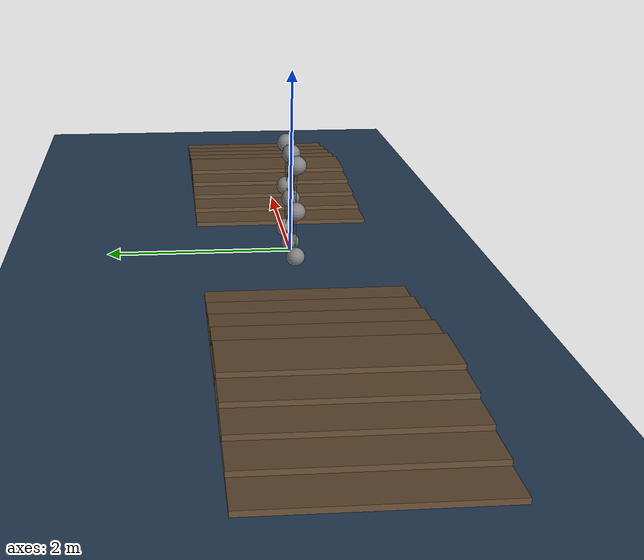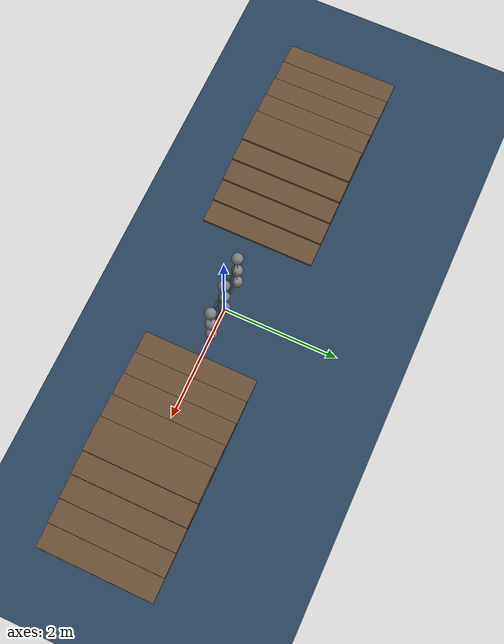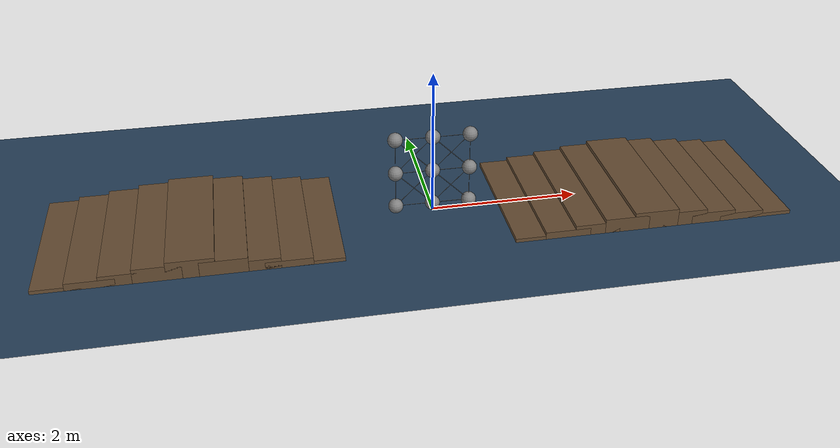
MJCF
<mujoco model="blob_hill">

    <option integrator="implicitfast" timestep="0.01" gravity="0 0 -9.81"/>

    <asset>
        <texture type="skybox" builtin="gradient" rgb1="0.6 0.7 0.9" rgb2="0.3 0.3 0.4" width="512" height="3072"/>
        <texture type="2d" name="groundplane" builtin="checker" mark="edge" rgb1="0.2 0.3 0.4" rgb2="0.1 0.2 0.3" markrgb="0.8 0.8 0.8" width="300" height="300"/>
        <material name="groundplane" texture="groundplane" texuniform="true" texrepeat="5 5" reflectance="0.2"/>
    </asset>

    <worldbody>
        <light name="global_light" directional="true" diffuse="1 1 1" specular="0.3 0.3 0.3" castshadow="false"/>
        <light name="fill_light_0" pos="-5 0 10" dir="0 0 -1" directional="false" diffuse="1 1 1" specular="0.2 0.2 0.2"/>
        <light name="fill_light_1" pos="0 0 10" dir="0 0 -1" directional="false" diffuse="1 1 1" specular="0.2 0.2 0.2"/>
        <light name="fill_light_2" pos="5 0 10" dir="0 0 -1" directional="false" diffuse="1 1 1" specular="0.2 0.2 0.2"/>

        <geom name="floor" pos="0 0 0" size="0 0 0.05" type="plane" material="groundplane" contype="2" conaffinity="1"/>

        <!-- center body cell -->
        <body name="body_cell:3" pos="0.0 0 0.6">
            <joint name="x_joint_cell:3" type="slide" axis="1 0 0"/>
            <joint name="z_joint_cell:3" type="slide" axis="0 0 1"/>
            <geom name="cell:3" type="sphere" size="0.1" mass="1" contype="1" conaffinity="2"/>
            <site name="site_cell:3" pos="0 0 0" size="0.01"/>
        </body>

        <body name="body_cell:0" pos="-0.5 0 0.1">
            <joint name="x_joint_cell:0" type="slide" axis="1 0 0"/>
            <joint name="z_joint_cell:0" type="slide" axis="0 0 1"/>
            <geom name="cell:0" type="sphere" size="0.1" mass="1" contype="1" conaffinity="2"/>
            <site name="site_cell:0" pos="0 0 0" size="0.01"/>
        </body>

        <body name="body_cell:1" pos="0.0 0 0.1">
            <joint name="x_joint_cell:1" type="slide" axis="1 0 0"/>
            <joint name="z_joint_cell:1" type="slide" axis="0 0 1"/>
            <geom name="cell:1" type="sphere" size="0.1" mass="1" contype="1" conaffinity="2"/>
            <site name="site_cell:1" pos="0 0 0" size="0.01"/>
        </body>

        <body name="body_cell:2" pos="-0.5 0 0.6">
            <joint name="x_joint_cell:2" type="slide" axis="1 0 0"/>
            <joint name="z_joint_cell:2" type="slide" axis="0 0 1"/>
            <geom name="cell:2" type="sphere" size="0.1" mass="1" contype="1" conaffinity="2"/>
            <site name="site_cell:2" pos="0 0 0" size="0.01"/>
        </body>

        <body name="body_cell:4" pos="0.5 0 0.1">
            <joint name="x_joint_cell:4" type="slide" axis="1 0 0"/>
            <joint name="z_joint_cell:4" type="slide" axis="0 0 1"/>
            <geom name="cell:4" type="sphere" size="0.1" mass="1" contype="1" conaffinity="2"/>
            <site name="site_cell:4" pos="0 0 0" size="0.01"/>
        </body>

        <body name="body_cell:5" pos="0.5 0 0.6">
            <joint name="x_joint_cell:5" type="slide" axis="1 0 0"/>
            <joint name="z_joint_cell:5" type="slide" axis="0 0 1"/>
            <geom name="cell:5" type="sphere" size="0.1" mass="1" contype="1" conaffinity="2"/>
            <site name="site_cell:5" pos="0 0 0" size="0.01"/>
        </body>

        <body name="body_cell:6" pos="-0.5 0 1.1">
            <joint name="x_joint_cell:6" type="slide" axis="1 0 0"/>
            <joint name="z_joint_cell:6" type="slide" axis="0 0 1"/>
            <geom name="cell:6" type="sphere" size="0.1" mass="1" contype="1" conaffinity="2"/>
            <site name="site_cell:6" pos="0 0 0" size="0.01"/>
        </body>

        <body name="body_cell:7" pos="0.0 0 1.1">
            <joint name="x_joint_cell:7" type="slide" axis="1 0 0"/>
            <joint name="z_joint_cell:7" type="slide" axis="0 0 1"/>
            <geom name="cell:7" type="sphere" size="0.1" mass="1" contype="1" conaffinity="2"/>
            <site name="site_cell:7" pos="0 0 0" size="0.01"/>
        </body>

        <body name="body_cell:8" pos="0.5 0 1.1">
            <joint name="x_joint_cell:8" type="slide" axis="1 0 0"/>
            <joint name="z_joint_cell:8" type="slide" axis="0 0 1"/>
            <geom name="cell:8" type="sphere" size="0.1" mass="1" contype="1" conaffinity="2"/>
            <site name="site_cell:8" pos="0 0 0" size="0.01"/>
        </body>

        <!-- Smooth symmetric hill made of boxes -->
        <geom name="hill_0_step_1" type="box" pos="1.2 0 0.025" size="0.3 1.0 0.025" rgba="0.4 0.3 0.2 1" contype="2" conaffinity="1"/>
        <geom name="hill_0_step_2" type="box" pos="1.6 0 0.05"  size="0.3 1.0 0.05"  rgba="0.4 0.3 0.2 1" contype="2" conaffinity="1"/>
        <geom name="hill_0_step_3" type="box" pos="2.0 0 0.075" size="0.3 1.0 0.075" rgba="0.4 0.3 0.2 1" contype="2" conaffinity="1"/>
        <geom name="hill_0_step_4" type="box" pos="2.4 0 0.1"   size="0.3 1.0 0.1"   rgba="0.4 0.3 0.2 1" contype="2" conaffinity="1"/>
        <geom name="hill_0_step_5" type="box" pos="2.8 0 0.125" size="0.3 1.0 0.125" rgba="0.4 0.3 0.2 1" contype="2" conaffinity="1"/>
        <geom name="hill_0_step_6" type="box" pos="3.2 0 0.1"   size="0.3 1.0 0.1"   rgba="0.4 0.3 0.2 1" contype="2" conaffinity="1"/>
        <geom name="hill_0_step_7" type="box" pos="3.6 0 0.075" size="0.3 1.0 0.075" rgba="0.4 0.3 0.2 1" contype="2" conaffinity="1"/>
        <geom name="hill_0_step_8" type="box" pos="4.0 0 0.05"  size="0.3 1.0 0.05"  rgba="0.4 0.3 0.2 1" contype="2" conaffinity="1"/>
        <geom name="hill_0_step_9" type="box" pos="4.4 0 0.025" size="0.3 1.0 0.025" rgba="0.4 0.3 0.2 1" contype="2" conaffinity="1"/>

        <!-- Smooth symmetric hill made of boxes -->
        <geom name="hill_1_step_1" type="box" pos="-4.8 0 0.025" size="0.3 1.0 0.025" rgba="0.4 0.3 0.2 1" contype="2" conaffinity="1"/>
        <geom name="hill_1_step_2" type="box" pos="-4.4 0 0.05"  size="0.3 1.0 0.05"  rgba="0.4 0.3 0.2 1" contype="2" conaffinity="1"/>
        <geom name="hill_1_step_3" type="box" pos="-4.0 0 0.075" size="0.3 1.0 0.075" rgba="0.4 0.3 0.2 1" contype="2" conaffinity="1"/>
        <geom name="hill_1_step_4" type="box" pos="-3.6 0 0.1"   size="0.3 1.0 0.1"   rgba="0.4 0.3 0.2 1" contype="2" conaffinity="1"/>
        <geom name="hill_1_step_5" type="box" pos="-3.2 0 0.125" size="0.3 1.0 0.125" rgba="0.4 0.3 0.2 1" contype="2" conaffinity="1"/>
        <geom name="hill_1_step_6" type="box" pos="-2.8 0 0.1"   size="0.3 1.0 0.1"   rgba="0.4 0.3 0.2 1" contype="2" conaffinity="1"/>
        <geom name="hill_1_step_7" type="box" pos="-2.4 0 0.075" size="0.3 1.0 0.075" rgba="0.4 0.3 0.2 1" contype="2" conaffinity="1"/>
        <geom name="hill_1_step_8" type="box" pos="-2.0 0 0.05"  size="0.3 1.0 0.05"  rgba="0.4 0.3 0.2 1" contype="2" conaffinity="1"/>
        <geom name="hill_1_step_9" type="box" pos="-1.6 0 0.025" size="0.3 1.0 0.025" rgba="0.4 0.3 0.2 1" contype="2" conaffinity="1"/>
    </worldbody>

    <tendon>
        <spatial name="spring_0_1" stiffness="150" damping="1" springlength="0.5">
            <site site="site_cell:0"/>
            <site site="site_cell:1"/>
        </spatial>

        <spatial name="spring_0_2" stiffness="150" damping="1" springlength="0.5">
            <site site="site_cell:0"/>
            <site site="site_cell:2"/>
        </spatial>

        <spatial name="spring_1_3" stiffness="150" damping="1" springlength="0.5">
            <site site="site_cell:1"/>
            <site site="site_cell:3"/>
        </spatial>

        <spatial name="spring_2_3" stiffness="150" damping="1" springlength="0.5">
            <site site="site_cell:2"/>
            <site site="site_cell:3"/>
        </spatial>

        <spatial name="spring_1_2" stiffness="150" damping="1" springlength="0.707">
            <site site="site_cell:1"/>
            <site site="site_cell:2"/>
        </spatial>

        <spatial name="spring_0_3" stiffness="150" damping="1" springlength="0.707">
            <site site="site_cell:0"/>
            <site site="site_cell:3"/>
        </spatial>

        <spatial name="spring_1_4" stiffness="150" damping="1" springlength="0.5">
            <site site="site_cell:1"/>
            <site site="site_cell:4"/>
        </spatial>

        <spatial name="spring_3_4" stiffness="150" damping="1" springlength="0.707">
            <site site="site_cell:3"/>
            <site site="site_cell:4"/>
        </spatial>

        <spatial name="spring_4_5" stiffness="150" damping="1" springlength="0.5">
            <site site="site_cell:4"/>
            <site site="site_cell:5"/>
        </spatial>

        <spatial name="spring_3_5" stiffness="150" damping="1" springlength="0.5">
            <site site="site_cell:3"/>
            <site site="site_cell:5"/>
        </spatial>

        <spatial name="spring_1_5" stiffness="150" damping="1" springlength="0.707">
            <site site="site_cell:1"/>
            <site site="site_cell:5"/>
        </spatial>

        <spatial name="spring_2_6" stiffness="150" damping="1" springlength="0.5">
            <site site="site_cell:2"/>
            <site site="site_cell:6"/>
        </spatial>

        <spatial name="spring_3_6" stiffness="150" damping="1" springlength="0.707">
            <site site="site_cell:3"/>
            <site site="site_cell:6"/>
        </spatial>

        <spatial name="spring_3_7" stiffness="150" damping="1" springlength="0.5">
            <site site="site_cell:3"/>
            <site site="site_cell:7"/>
        </spatial>

        <spatial name="spring_6_7" stiffness="150" damping="1" springlength="0.5">
            <site site="site_cell:6"/>
            <site site="site_cell:7"/>
        </spatial>

        <spatial name="spring_2_7" stiffness="150" damping="1" springlength="0.707">
            <site site="site_cell:2"/>
            <site site="site_cell:7"/>
        </spatial>

        <spatial name="spring_5_8" stiffness="150" damping="1" springlength="0.5">
            <site site="site_cell:5"/>
            <site site="site_cell:8"/>
        </spatial>

        <spatial name="spring_7_8" stiffness="150" damping="1" springlength="0.5">
            <site site="site_cell:7"/>
            <site site="site_cell:8"/>
        </spatial>

        <spatial name="spring_3_8" stiffness="150" damping="1" springlength="0.707">
            <site site="site_cell:3"/>
            <site site="site_cell:8"/>
        </spatial>

        <spatial name="spring_5_7" stiffness="150" damping="1" springlength="0.707">
            <site site="site_cell:5"/>
            <site site="site_cell:7"/>
        </spatial>
    </tendon>

    <actuator>
        <motor joint="x_joint_cell:0" ctrlrange="-1 1" gear="2"/>
        <motor joint="x_joint_cell:1" ctrlrange="-1 1" gear="2"/>
        <motor joint="x_joint_cell:2" ctrlrange="-1 1" gear="2"/>
        <motor joint="x_joint_cell:3" ctrlrange="-1 1" gear="2"/>
        <motor joint="x_joint_cell:4" ctrlrange="-1 1" gear="2"/>
        <motor joint="x_joint_cell:5" ctrlrange="-1 1" gear="2"/>
        <motor joint="x_joint_cell:6" ctrlrange="-1 1" gear="2"/>
        <motor joint="x_joint_cell:7" ctrlrange="-1 1" gear="2"/>
        <motor joint="x_joint_cell:8" ctrlrange="-1 1" gear="2"/>

        <motor joint="z_joint_cell:0" ctrlrange="-1 1" gear="2"/>
        <motor joint="z_joint_cell:1" ctrlrange="-1 1" gear="2"/>
        <motor joint="z_joint_cell:2" ctrlrange="-1 1" gear="2"/>
        <motor joint="z_joint_cell:3" ctrlrange="-1 1" gear="2"/>
        <motor joint="z_joint_cell:4" ctrlrange="-1 1" gear="2"/>
        <motor joint="z_joint_cell:5" ctrlrange="-1 1" gear="2"/>
        <motor joint="z_joint_cell:6" ctrlrange="-1 1" gear="2"/>
        <motor joint="z_joint_cell:7" ctrlrange="-1 1" gear="2"/>
        <motor joint="z_joint_cell:8" ctrlrange="-1 1" gear="2"/>
    </actuator>
</mujoco>
